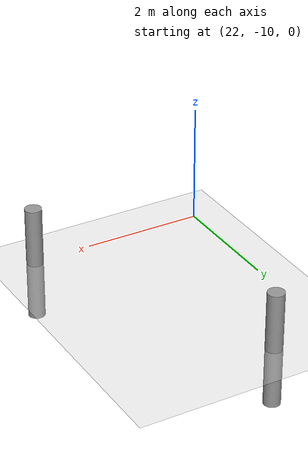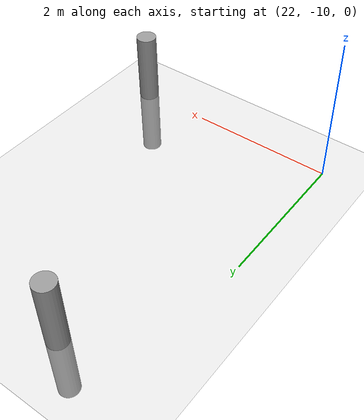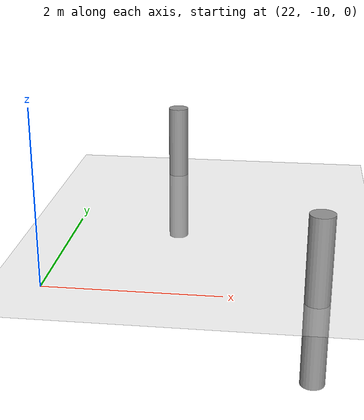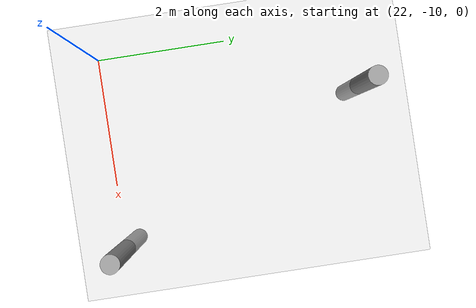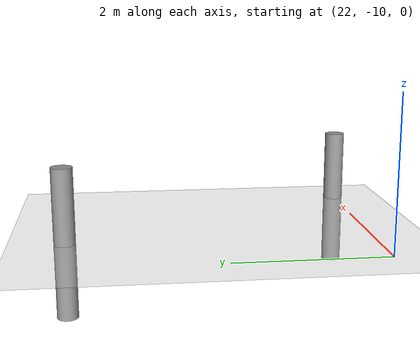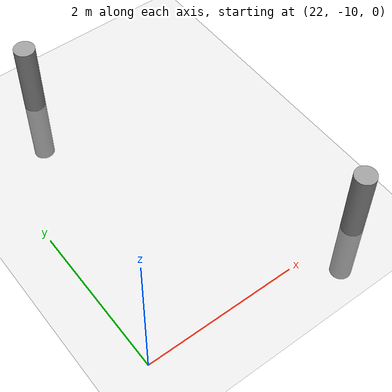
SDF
<sdf version="1.6">
 <world name="default">
  <model name="ground_plane">
   <static>1</static>
   <link name="link">
    <collision name="collision">
     <geometry><plane><normal>0 0 1</normal><size>100 100</size></plane></geometry>
     <surface><friction><ode><mu>100</mu><mu2>50</mu2></ode></friction></surface>
    </collision>
    <visual name="visual">
     <cast_shadows>0</cast_shadows>
     <geometry><plane><normal>0 0 1</normal><size>100 100</size></plane></geometry>
     <material>
      <script><uri>file://media/materials/scripts/gazebo.material</uri><name>Gazebo/Grey</name></script>
     </material>
    </visual>
   </link>
  </model>
  <model name="my_cylinder014_clone_6_0">
   <pose>23 -6 0 0 -0 0</pose>
   <link name="my_cylinder014::link">
    <inertial>
     <mass>1</mass>
     <inertia><ixx>0.145833</ixx><ixy>0</ixy><ixz>0</ixz><iyy>0.145833</iyy><iyz>0</iyz><izz>0.125</izz></inertia>
    </inertial>
    <visual name="visual">
     <geometry><cylinder><radius>0.14</radius><length>2</length></cylinder></geometry>
     <material>
      <script><name>Gazebo/Grey</name><uri>file://media/materials/scripts/gazebo.material</uri></script>
      <ambient>0.3 0.3 0.3 1</ambient>
      <diffuse>0.7 0.7 0.7 1</diffuse>
      <specular>1 0.01 0.01 1</specular>
      <emissive>0 0 0 1</emissive>
      <shader type="vertex"><normal_map>__default__</normal_map></shader>
     </material>
    </visual>
    <collision name="collision">
     <geometry><cylinder><radius>0.14</radius><length>2</length></cylinder></geometry>
     <surface>
      <friction>
       <ode><mu>1</mu><mu2>1</mu2><fdir1>0 0 0</fdir1><slip1>0</slip1><slip2>0</slip2></ode>
       <torsional>
        <coefficient>1</coefficient>
        <patch_radius>0</patch_radius>
        <surface_radius>0</surface_radius>
        <use_patch_radius>1</use_patch_radius>
        <ode><slip>0</slip></ode>
       </torsional>
      </friction>
      <bounce><restitution_coefficient>0</restitution_coefficient><threshold>1e+06</threshold></bounce>
      <contact>
       <collide_without_contact>0</collide_without_contact>
       <collide_without_contact_bitmask>1</collide_without_contact_bitmask>
       <collide_bitmask>1</collide_bitmask>
       <ode>
        <soft_cfm>0</soft_cfm>
        <soft_erp>0.2</soft_erp>
        <kp>1e+13</kp>
        <kd>1</kd>
        <max_vel>0.01</max_vel>
        <min_depth>0</min_depth>
       </ode>
       <bullet>
        <split_impulse>1</split_impulse>
        <split_impulse_penetration_threshold>-0.01</split_impulse_penetration_threshold>
        <soft_cfm>0</soft_cfm>
        <soft_erp>0.2</soft_erp>
        <kp>1e+13</kp>
        <kd>1</kd>
       </bullet>
      </contact>
     </surface>
    </collision>
   </link>
   <static>1</static>
  </model>
  <model name="my_cylinder014_clone_4_1">
   <pose>25 -10 0 0 -0 0</pose>
   <link name="my_cylinder014::link">
    <inertial>
     <mass>1</mass>
     <inertia><ixx>0.145833</ixx><ixy>0</ixy><ixz>0</ixz><iyy>0.145833</iyy><iyz>0</iyz><izz>0.125</izz></inertia>
    </inertial>
    <visual name="visual">
     <geometry><cylinder><radius>0.14</radius><length>2</length></cylinder></geometry>
     <material>
      <script><name>Gazebo/Grey</name><uri>file://media/materials/scripts/gazebo.material</uri></script>
      <ambient>0.3 0.3 0.3 1</ambient>
      <diffuse>0.7 0.7 0.7 1</diffuse>
      <specular>1 0.01 0.01 1</specular>
      <emissive>0 0 0 1</emissive>
      <shader type="vertex"><normal_map>__default__</normal_map></shader>
     </material>
    </visual>
    <collision name="collision">
     <geometry><cylinder><radius>0.14</radius><length>2</length></cylinder></geometry>
     <surface>
      <friction>
       <ode><mu>1</mu><mu2>1</mu2><fdir1>0 0 0</fdir1><slip1>0</slip1><slip2>0</slip2></ode>
       <torsional>
        <coefficient>1</coefficient>
        <patch_radius>0</patch_radius>
        <surface_radius>0</surface_radius>
        <use_patch_radius>1</use_patch_radius>
        <ode><slip>0</slip></ode>
       </torsional>
      </friction>
      <bounce><restitution_coefficient>0</restitution_coefficient><threshold>1e+06</threshold></bounce>
      <contact>
       <collide_without_contact>0</collide_without_contact>
       <collide_without_contact_bitmask>1</collide_without_contact_bitmask>
       <collide_bitmask>1</collide_bitmask>
       <ode>
        <soft_cfm>0</soft_cfm>
        <soft_erp>0.2</soft_erp>
        <kp>1e+13</kp>
        <kd>1</kd>
        <max_vel>0.01</max_vel>
        <min_depth>0</min_depth>
       </ode>
       <bullet>
        <split_impulse>1</split_impulse>
        <split_impulse_penetration_threshold>-0.01</split_impulse_penetration_threshold>
        <soft_cfm>0</soft_cfm>
        <soft_erp>0.2</soft_erp>
        <kp>1e+13</kp>
        <kd>1</kd>
       </bullet>
      </contact>
     </surface>
    </collision>
   </link>
   <static>1</static>
  </model>
  <model name="my_cylinder014_clone_4_1">
   <pose>25 -10 0 0 -0 0</pose>
   <link name="my_cylinder014::link">
    <inertial>
     <mass>1</mass>
     <inertia><ixx>0.145833</ixx><ixy>0</ixy><ixz>0</ixz><iyy>0.145833</iyy><iyz>0</iyz><izz>0.125</izz></inertia>
    </inertial>
    <visual name="visual">
     <geometry><cylinder><radius>0.14</radius><length>2</length></cylinder></geometry>
     <material>
      <script><name>Gazebo/Grey</name><uri>file://media/materials/scripts/gazebo.material</uri></script>
      <ambient>0.3 0.3 0.3 1</ambient>
      <diffuse>0.7 0.7 0.7 1</diffuse>
      <specular>1 0.01 0.01 1</specular>
      <emissive>0 0 0 1</emissive>
      <shader type="vertex"><normal_map>__default__</normal_map></shader>
     </material>
    </visual>
    <collision name="collision">
     <geometry><cylinder><radius>0.14</radius><length>2</length></cylinder></geometry>
     <surface>
      <friction>
       <ode><mu>1</mu><mu2>1</mu2><fdir1>0 0 0</fdir1><slip1>0</slip1><slip2>0</slip2></ode>
       <torsional>
        <coefficient>1</coefficient>
        <patch_radius>0</patch_radius>
        <surface_radius>0</surface_radius>
        <use_patch_radius>1</use_patch_radius>
        <ode><slip>0</slip></ode>
       </torsional>
      </friction>
      <bounce><restitution_coefficient>0</restitution_coefficient><threshold>1e+06</threshold></bounce>
      <contact>
       <collide_without_contact>0</collide_without_contact>
       <collide_without_contact_bitmask>1</collide_without_contact_bitmask>
       <collide_bitmask>1</collide_bitmask>
       <ode>
        <soft_cfm>0</soft_cfm>
        <soft_erp>0.2</soft_erp>
        <kp>1e+13</kp>
        <kd>1</kd>
        <max_vel>0.01</max_vel>
        <min_depth>0</min_depth>
       </ode>
       <bullet>
        <split_impulse>1</split_impulse>
        <split_impulse_penetration_threshold>-0.01</split_impulse_penetration_threshold>
        <soft_cfm>0</soft_cfm>
        <soft_erp>0.2</soft_erp>
        <kp>1e+13</kp>
        <kd>1</kd>
       </bullet>
      </contact>
     </surface>
    </collision>
   </link>
   <static>1</static>
  </model>
 </world>
</sdf>
